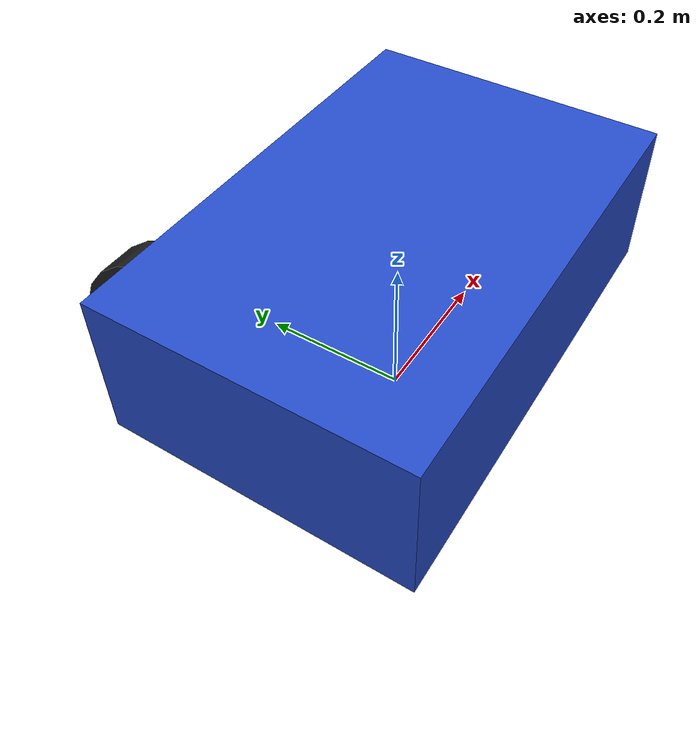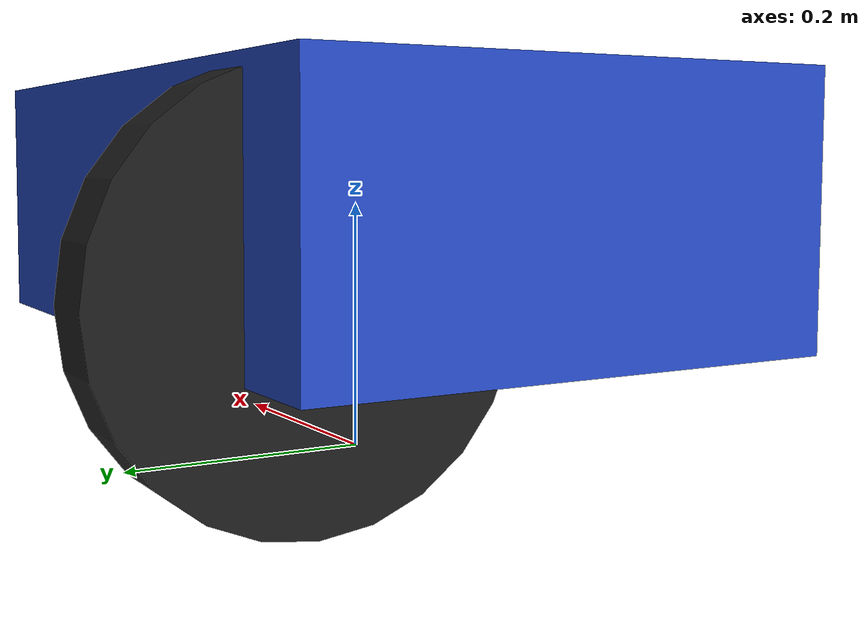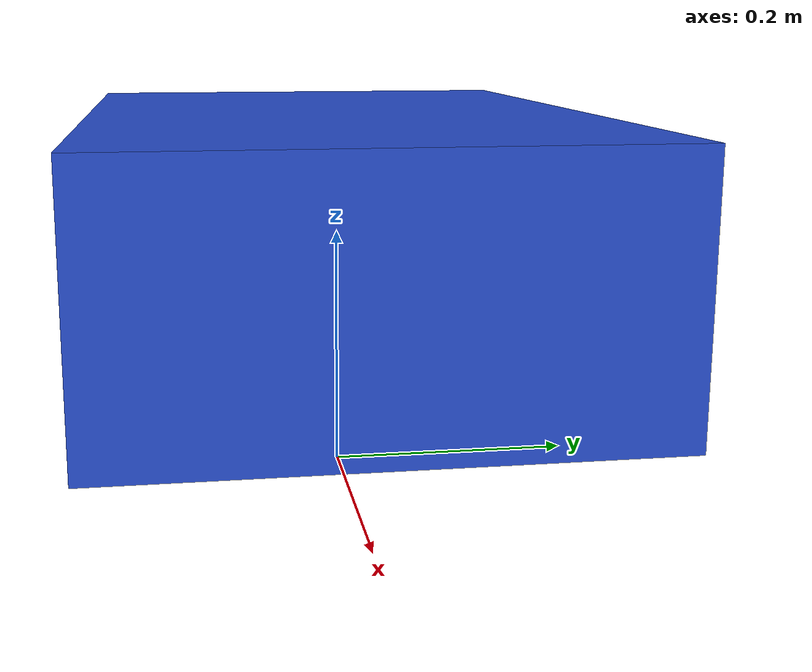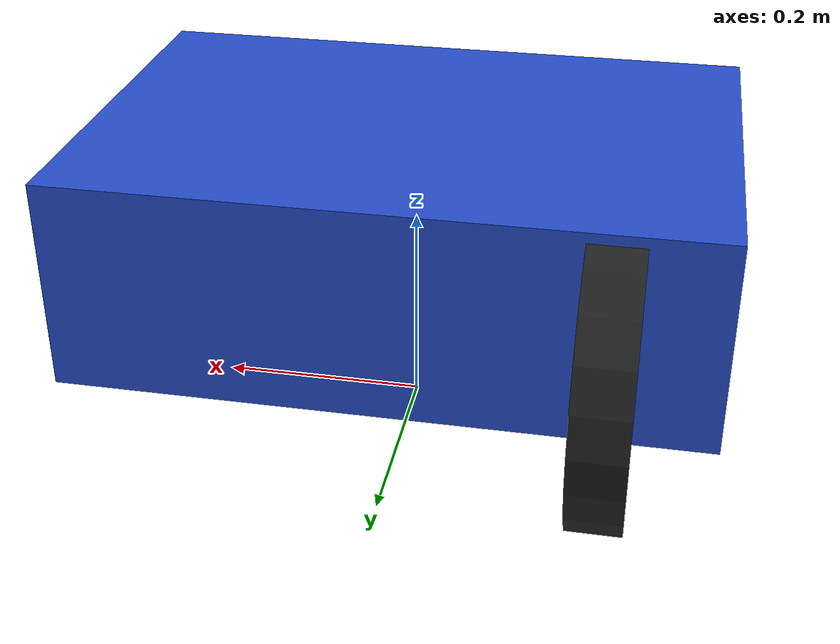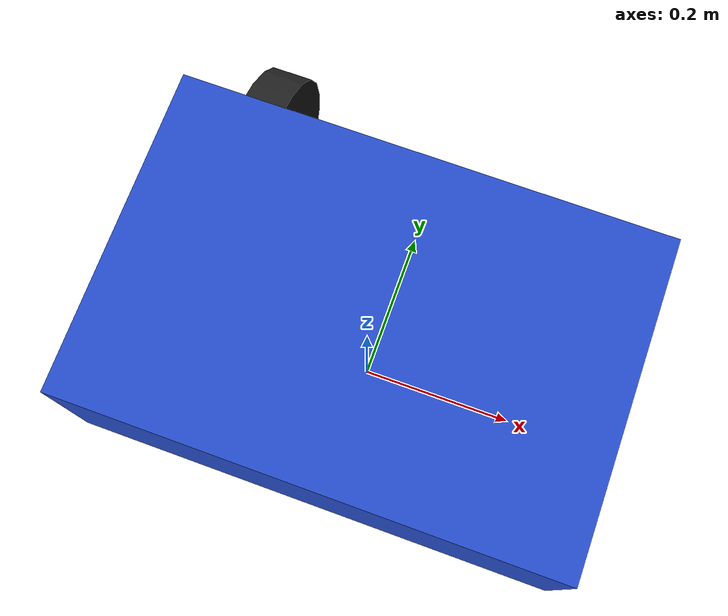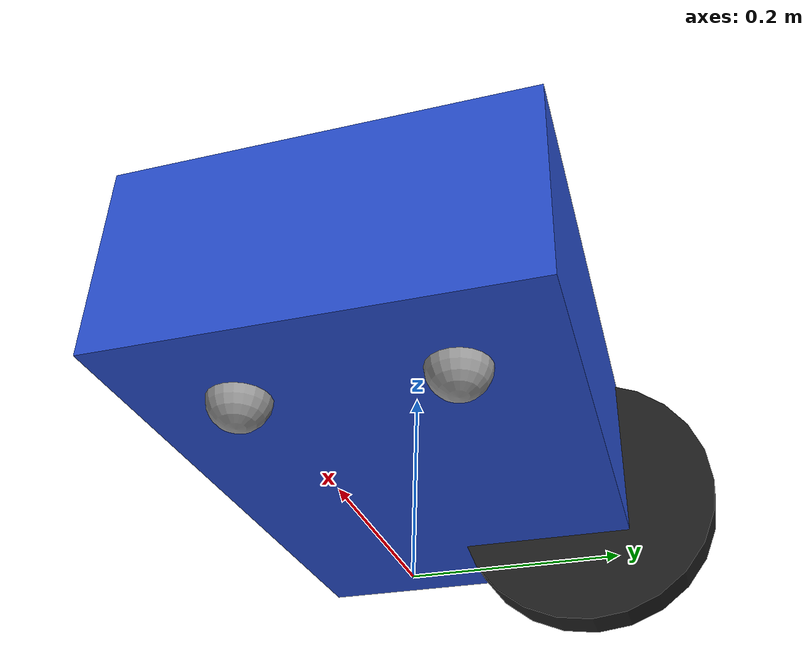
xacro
<robot name="ALFRED">

<link name="ground_ref"/>

  <!-- Main Body -->
<link name="base_link">
  <visual>
  <origin rpy="0 0 0" xyz="0 0 0"/>
  <geometry>
  <box size="0.6 0.4 0.2"/>
  </geometry>
  <material name="blue"/>
  </visual>
  <collision>
  <geometry>
  <box size="0.6 0.4 0.2"/>
  </geometry>
  </collision>
  <inertial>
  <mass value="5.0"/>
  <inertia ixx="0.02" ixy="0.0" ixz="0.0" iyy="0.03" iyz="0.0" izz="0.04"/>
  </inertial>
</link>

  <!-- Left Wheel -->
<link name="left_wheel">
<visual>
<geometry>
<cylinder radius="0.15" length="0.05"/>
</geometry>
<material name="black"/>
</visual>
<collision>
<geometry>
<cylinder radius="0.15" length="0.05"/>
</geometry>
</collision>
<inertial>
<mass value="0.5"/>
<inertia ixx="0.001" ixy="0.0" ixz="0.0" iyy="0.001" iyz="0.0" izz="0.001"/>
</inertial>
</link>

  <!-- Right Wheel -->
<link name="right_wheel">
<visual>
<geometry>
<cylinder radius="0.05" length="0.03"/>
</geometry>
<material name="black"/>
</visual>
<collision>
<geometry>
<cylinder radius="0.05" length="0.03"/>
</geometry>
</collision>
<inertial>
<mass value="0.5"/>
<inertia ixx="0.001" ixy="0.0" ixz="0.0" iyy="0.001" iyz="0.0" izz="0.001"/>
</inertial>
</link>

  <!-- Caster Wheel 1 -->
<link name="caster_wheel_1">
<visual>
<geometry>
<sphere radius="0.03"/>
</geometry>
<material name="gray"/>
</visual>
<collision>
<geometry>
<sphere radius="0.03"/>
</geometry>
</collision>
<inertial>
<mass value="0.2"/>
<inertia ixx="0.0001" ixy="0.0" ixz="0.0" iyy="0.0001" iyz="0.0" izz="0.0001"/>
</inertial>
</link>

  <!-- Caster Wheel 2 -->
<link name="caster_wheel_2">
<visual>
<geometry>
<sphere radius="0.03"/>
</geometry>
<material name="gray"/>
</visual>
<collision>
<geometry>
<sphere radius="0.03"/>
</geometry>
</collision>
<inertial>
<mass value="0.2"/>
<inertia ixx="0.0001" ixy="0.0" ixz="0.0" iyy="0.0001" iyz="0.0" izz="0.0001"/>
</inertial>
</link>

  <!-- Joints -->

<joint name="base_joint" type="fixed">
  <parent link="ground_ref"/>
  <child link="base_link"/>
  <origin rpy="0 0 0" xyz="0 0 0.2"/>

</joint>

<!-- Left Wheel Joint -->
<joint name="left_wheel_joint" type="continuous">
<parent link="base_link"/>
<child link="left_wheel"/>
<origin xyz="-0.2 0.15 -0.05" rpy="0 1.5708 0"/>
<axis xyz="0 0 1"/>
</joint>

  <!-- Right Wheel Joint -->
<joint name="right_wheel_joint" type="continuous">
<parent link="base_link"/>
<child link="right_wheel"/>
<origin xyz="-0.2 -0.15 -0.05" rpy="0 1.5708 0"/>
<axis xyz="0 0 1"/>
</joint>

  <!-- Caster Wheel 1 Joint -->
<joint name="caster_wheel_1_joint" type="fixed">
<parent link="base_link"/>
<child link="caster_wheel_1"/>
<origin xyz="0.2 0.1 -0.1" rpy="0 0 0"/>
</joint>

  <!-- Caster Wheel 2 Joint -->
<joint name="caster_wheel_2_joint" type="fixed">
<parent link="base_link"/>
<child link="caster_wheel_2"/>
<origin xyz="0.2 -0.1 -0.1" rpy="0 0 0"/>
</joint>

</robot>
